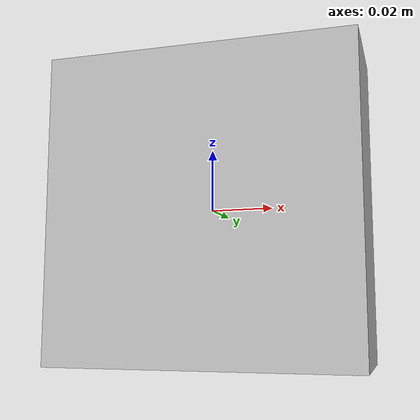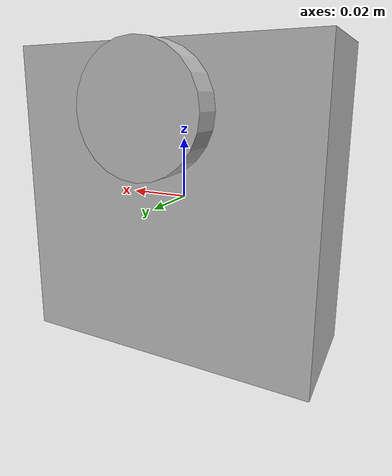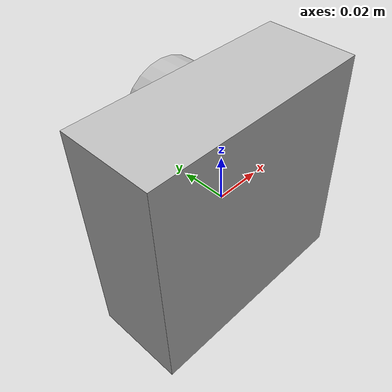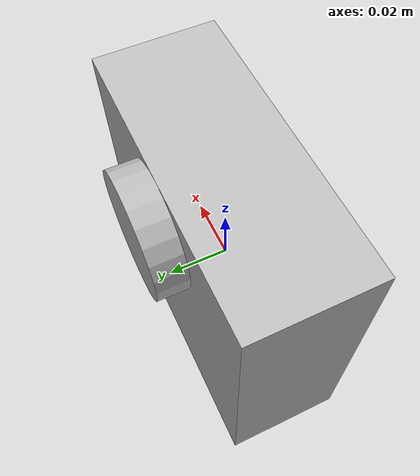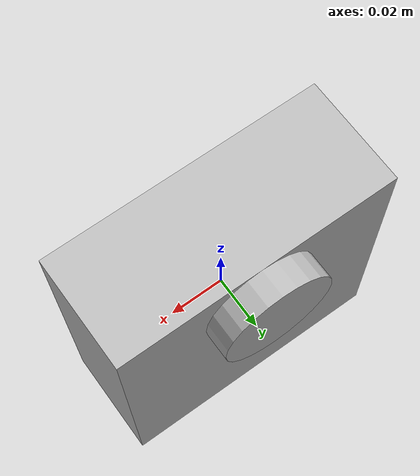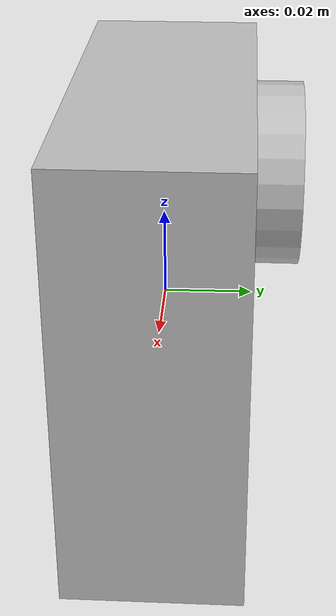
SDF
<?xml version = "1.0"?>
<sdf version= "1.4">
<model name = "camera">
	<static>true</static>
	<link name="outerframe">
		<pose> 0 0 0 0 0 0 </pose>

		<collision name="collisionBox">
			<geometry>
			<box><size>0.1 0.04 0.1</size></box>
			</geometry>
		</collision>
		<visual name="visualBox">
			<geometry>
			<box><size>0.1 0.04 0.1</size></box>
			</geometry>
		</visual>

		<collision name="collisionLense">
			<pose>0.0 0.02 0.03 1.5707963 0 0</pose>
			<geometry>
			<cylinder>
				<radius>0.02</radius>
				<length>0.02</length>
			</cylinder>
			</geometry>
		</collision>
		<visual name="visualLense">
			<pose>0.0 0.02 0.03 1.5707963 0 0</pose>
			<geometry>
			<cylinder>
				<radius>0.02</radius>
				<length>0.02</length>
			</cylinder>
			</geometry>
		</visual>
		<sensor name="Camera" type="camera">
			<pose>0 0 0.03 0 0 1.57</pose>
			<update_rate>50</update_rate>
			<always_on>true</always_on>
			<visualize>true</visualize>
			<camera>
				<horizontal_fov>1.047</horizontal_fov>
				<image>
					<height>786</height>
					<width>786</width>
				</image>
				<noise>
				    <type>gaussian</type>
				    <mean>0.0</mean>
				    <stddev>0.01</stddev>
				</noise>
				<clip>
				    <near>0.1</near>
				    <far>100</far>
				</clip>
				<distortion>
				   <k1>-0.25</k1>
				   <k2>0.12</k2>
				   <k3>0.0</k3>
				   <p1>-0.00028</p1>
				   <p2>-0.00005</p2>
				   <center>0.5 0.5</center>
				</distortion>
			</camera>

		</sensor>

	</link>
</model>
</sdf>
